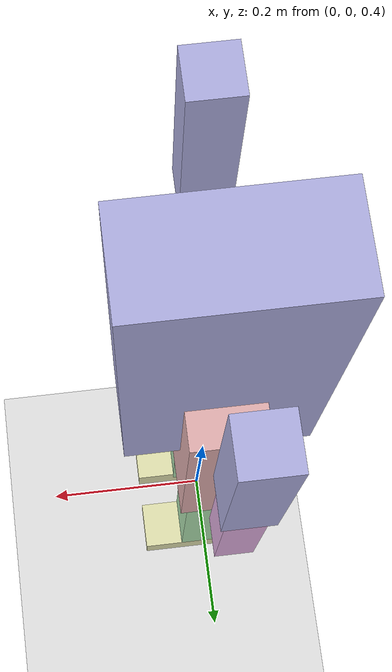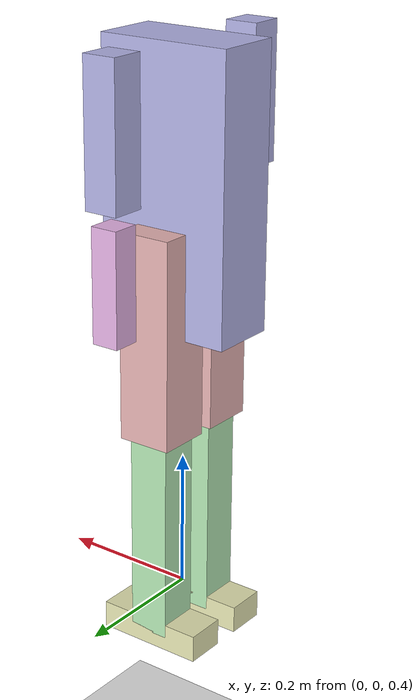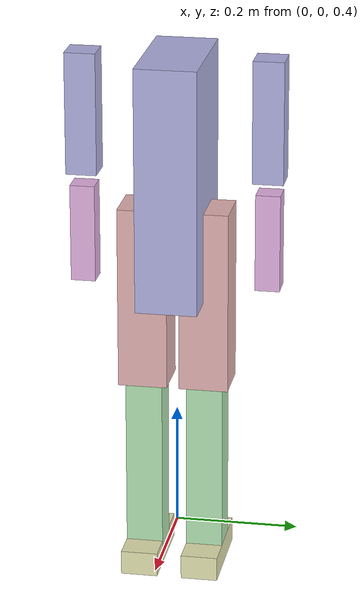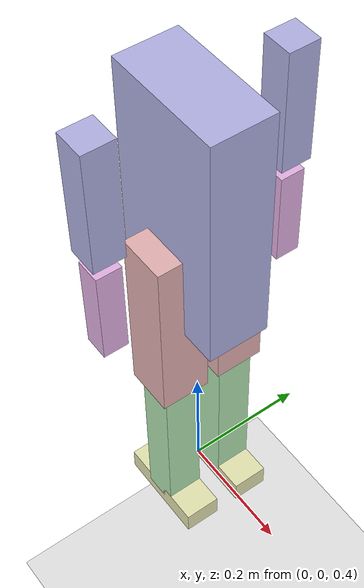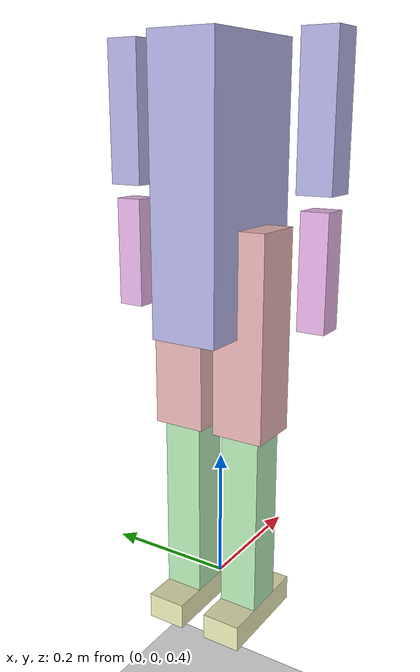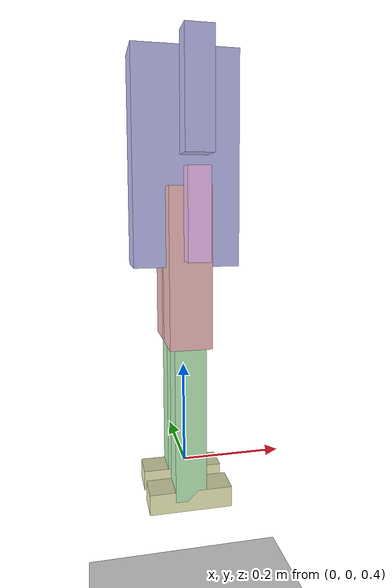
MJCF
<mujoco model="simple_humanoid">
  <compiler angle="radian" coordinate="local"/>

  <default>
    <joint damping="1" limited="true"/>
    <geom conaffinity="0" condim="3" density="1000" friction="1 0.5 0.5" rgba="0.8 0.6 0.4 1"/>
  </default>

  <worldbody>
    <light diffuse="1 1 1" dir="0 0 -1" directional="true" pos="0 0 3"/>
    <geom name="floor" pos="0 0 0" size="5 5 0.1" type="plane" rgba="0.9 0.9 0.9 1"/>

    <body name="torso" pos="0 0 1.0">
      <freejoint name="root"/>
      <geom name="torso" size="0.1 0.05 0.2" type="box" rgba="0.7 0.7 0.9 1"/>

      <!-- Left leg -->
      <body name="left_thigh" pos="0 0.05 -0.2">
        <joint name="left_hip" type="hinge" axis="0 1 0" range="-120 30" pos="0 0 0"/>
        <geom name="left_thigh" size="0.04 0.04 0.15" type="box" rgba="0.9 0.7 0.7 1"/>

        <body name="left_shin" pos="0 0 -0.3">
          <joint name="left_knee" type="hinge" axis="0 1 0" range="-150 0" pos="0 0 0"/>
          <geom name="left_shin" size="0.03 0.03 0.15" type="box" rgba="0.7 0.9 0.7 1"/>

          <body name="left_foot" pos="0 0 -0.15">
            <joint name="left_ankle" type="hinge" axis="0 1 0" range="-45 45" pos="0 0 0"/>
            <geom name="left_foot" size="0.08 0.03 0.02" type="box" rgba="0.9 0.9 0.7 1"/>
          </body>
        </body>
      </body>

      <!-- Right leg -->
      <body name="right_thigh" pos="0 -0.05 -0.2">
        <joint name="right_hip" type="hinge" axis="0 1 0" range="-120 30" pos="0 0 0"/>
        <geom name="right_thigh" size="0.04 0.04 0.15" type="box" rgba="0.9 0.7 0.7 1"/>

        <body name="right_shin" pos="0 0 -0.3">
          <joint name="right_knee" type="hinge" axis="0 1 0" range="-150 0" pos="0 0 0"/>
          <geom name="right_shin" size="0.03 0.03 0.15" type="box" rgba="0.7 0.9 0.7 1"/>

          <body name="right_foot" pos="0 0 -0.15">
            <joint name="right_ankle" type="hinge" axis="0 1 0" range="-45 45" pos="0 0 0"/>
            <geom name="right_foot" size="0.08 0.03 0.02" type="box" rgba="0.9 0.9 0.7 1"/>
          </body>
        </body>
      </body>

      <!-- Left arm -->
      <body name="left_upper_arm" pos="0 0.15 0.1">
        <joint name="left_shoulder" type="hinge" axis="0 1 0" range="-90 90" pos="0 0 0"/>
        <geom name="left_upper_arm" size="0.025 0.025 0.1" type="box" rgba="0.7 0.7 0.9 1"/>

        <body name="left_forearm" pos="0 0 -0.2">
          <joint name="left_elbow" type="hinge" axis="0 1 0" range="-150 0" pos="0 0 0"/>
          <geom name="left_forearm" size="0.02 0.02 0.08" type="box" rgba="0.9 0.7 0.9 1"/>
        </body>
      </body>

      <!-- Right arm -->
      <body name="right_upper_arm" pos="0 -0.15 0.1">
        <joint name="right_shoulder" type="hinge" axis="0 1 0" range="-90 90" pos="0 0 0"/>
        <geom name="right_upper_arm" size="0.025 0.025 0.1" type="box" rgba="0.7 0.7 0.9 1"/>

        <body name="right_forearm" pos="0 0 -0.2">
          <joint name="right_elbow" type="hinge" axis="0 1 0" range="-150 0" pos="0 0 0"/>
          <geom name="right_forearm" size="0.02 0.02 0.08" type="box" rgba="0.9 0.7 0.9 1"/>
        </body>
      </body>
    </body>
  </worldbody>

  <actuator>
    <motor joint="left_hip" name="left_hip_motor" ctrlrange="-50 50"/>
    <motor joint="left_knee" name="left_knee_motor" ctrlrange="-50 50"/>
    <motor joint="left_ankle" name="left_ankle_motor" ctrlrange="-20 20"/>
    <motor joint="right_hip" name="right_hip_motor" ctrlrange="-50 50"/>
    <motor joint="right_knee" name="right_knee_motor" ctrlrange="-50 50"/>
    <motor joint="right_ankle" name="right_ankle_motor" ctrlrange="-20 20"/>
    <motor joint="left_shoulder" name="left_shoulder_motor" ctrlrange="-30 30"/>
    <motor joint="left_elbow" name="left_elbow_motor" ctrlrange="-30 30"/>
    <motor joint="right_shoulder" name="right_shoulder_motor" ctrlrange="-30 30"/>
    <motor joint="right_elbow" name="right_elbow_motor" ctrlrange="-30 30"/>
  </actuator>
</mujoco>
